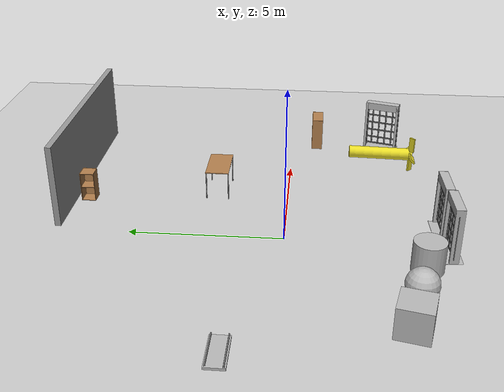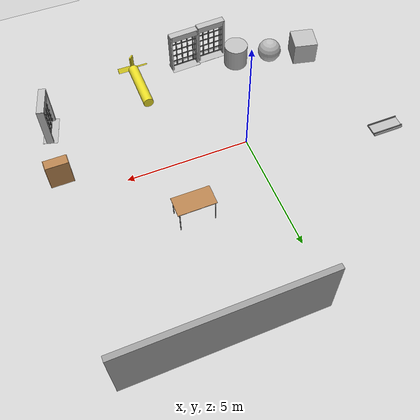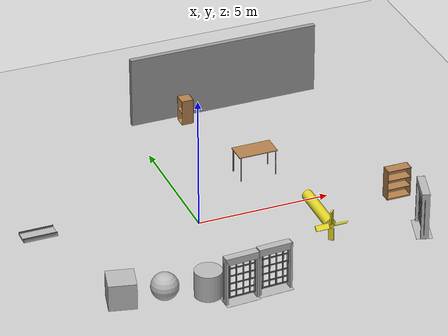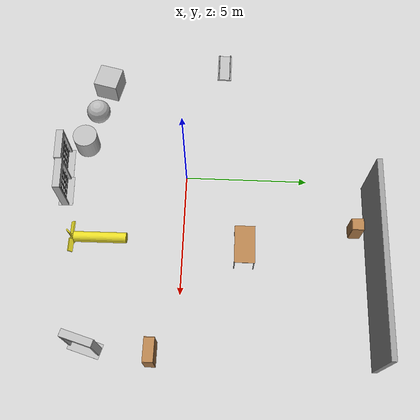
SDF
<sdf version="1.6">
 <world name="default">
  <light name="sun" type="directional">
   <pose>0 0 10 0 -0 0</pose>
   <diffuse>0.8 0.8 0.8 1</diffuse>
   <specular>0.2 0.2 0.2 1</specular>
   <attenuation>
    <range>1000</range>
    <constant>0.9</constant>
    <linear>0.01</linear>
    <quadratic>0.001</quadratic>
   </attenuation>
   <direction>-0.5 0.1 -0.9</direction>
  </light>
  <model name="ground_plane">
   <static>1</static>
   <link name="link">
    <collision name="collision">
     <geometry><plane><normal>0 0 1</normal><size>100 100</size></plane></geometry>
     <surface><friction><ode><mu>100</mu><mu2>50</mu2></ode></friction></surface>
    </collision>
    <visual name="visual">
     <cast_shadows>0</cast_shadows>
     <geometry><plane><normal>0 0 1</normal><size>100 100</size></plane></geometry>
     <material>
      <script><uri>file://media/materials/scripts/gazebo.material</uri><name>Gazebo/Grey</name></script>
     </material>
    </visual>
   </link>
  </model>
  <gravity>0 0 -9.8</gravity>
  <magnetic_field>6e-06 2.3e-05 -4.2e-05</magnetic_field>
  <atmosphere type="adiabatic"/>
  <physics name="default_physics" default="0" type="ode">
   <max_step_size>0.001</max_step_size>
   <real_time_factor>1</real_time_factor>
   <real_time_update_rate>1000</real_time_update_rate>
  </physics>
  <scene><ambient>0.4 0.4 0.4 1</ambient><background>0.7 0.7 0.7 1</background><shadows>1</shadows></scene>
  <spherical_coordinates>
   <surface_model>EARTH_WGS84</surface_model>
   <latitude_deg>0</latitude_deg>
   <longitude_deg>0</longitude_deg>
   <elevation>0</elevation>
   <heading_deg>0</heading_deg>
  </spherical_coordinates>
  <model name="frc2016_portcullis">
   <link name="base">
    <inertial>
     <mass>50</mass>
     <pose>0 0 1.02941 0 -0 0</pose>
     <inertia><ixx>3.81711</ixx><ixy>0</ixy><ixz>0</ixz><iyy>4.87698</iyy><iyz>0</iyz><izz>1.6283</izz></inertia>
    </inertial>
    <visual name="platform">
     <pose>0 0 0.07284 0 -0 0</pose>
     <geometry><box><size>1.27 0.5842 0.003175</size></box></geometry>
    </visual>
    <collision name="platform">
     <pose>0 0 0.07284 0 -0 0</pose>
     <geometry><box><size>1.27 0.5842 0.003175</size></box></geometry>
    </collision>
    <visual name="left_column">
     <pose>0.59284 0 0.99042 0 -0 0</pose>
     <geometry><box><size>0.08375 0.28575 1.83198</size></box></geometry>
    </visual>
    <collision name="left_column">
     <pose>0.59284 0 0.99042 0 -0 0</pose>
     <geometry><box><size>0.08375 0.28575 1.83198</size></box></geometry>
    </collision>
    <visual name="right_column">
     <pose>-0.57759 0 0.99042 0 -0 0</pose>
     <geometry><box><size>0.08375 0.28575 1.83198</size></box></geometry>
    </visual>
    <collision name="right_column">
     <pose>-0.57759 0 0.99042 0 -0 0</pose>
     <geometry><box><size>0.08375 0.28575 1.83198</size></box></geometry>
    </collision>
    <visual name="top">
     <pose>-0.00034 0 1.77722 0 -0 0</pose>
     <geometry><box><size>1.22962 0.28575 0.26657</size></box></geometry>
    </visual>
    <collision name="top">
     <pose>-0.00034 0 1.77722 0 -0 0</pose>
     <geometry><box><size>1.22962 0.28575 0.26657</size></box></geometry>
    </collision>
    <visual name="castor1">
     <pose>-0.45651 -0.16234 0.03272 0 -0 0</pose>
     <geometry><sphere><radius>0.03272</radius></sphere></geometry>
    </visual>
    <collision name="castor1">
     <pose>-0.45651 -0.16234 0.03272 0 -0 0</pose>
     <geometry><sphere><radius>0.03272</radius></sphere></geometry>
    </collision>
    <visual name="castor2">
     <pose>-0.27883 0.21836 0.03272 0 -0 0</pose>
     <geometry><sphere><radius>0.03272</radius></sphere></geometry>
    </visual>
    <collision name="castor2">
     <pose>-0.27883 0.21836 0.03272 0 -0 0</pose>
     <geometry><sphere><radius>0.03272</radius></sphere></geometry>
    </collision>
    <visual name="castor3">
     <pose>0.28083 0.21906 0.03272 0 -0 0</pose>
     <geometry><sphere><radius>0.03272</radius></sphere></geometry>
    </visual>
    <collision name="castor3">
     <pose>0.28083 0.21906 0.03272 0 -0 0</pose>
     <geometry><sphere><radius>0.03272</radius></sphere></geometry>
    </collision>
    <visual name="castor4">
     <pose>0.45871 -0.16186 0.03272 0 -0 0</pose>
     <geometry><sphere><radius>0.03272</radius></sphere></geometry>
    </visual>
    <collision name="castor4">
     <pose>0.45871 -0.16186 0.03272 0 -0 0</pose>
     <geometry><sphere><radius>0.03272</radius></sphere></geometry>
    </collision>
   </link>
   <link name="gate">
    <pose>-0.0287 0.02885 0.93327 0 -0 0</pose>
    <inertial>
     <mass>2</mass>
     <inertia><ixx>3.81711</ixx><ixy>0</ixy><ixz>0</ixz><iyy>4.87698</iyy><iyz>0</iyz><izz>1.6283</izz></inertia>
    </inertial>
    <collision name="collision"><geometry><box><size>1.1938 0.02496 1.45732</size></box></geometry></collision>
    <visual name="horz_1">
     <pose>0 0 -0.70326 0 -0 0</pose>
     <geometry><box><size>1.1938 0.02496 0.0508</size></box></geometry>
     <material><ambient>0.4 0.4 0.4 1</ambient><diffuse>0.4 0.4 0.4 1</diffuse></material>
    </visual>
    <visual name="horz_2">
     <pose>0 0 -0.44926 0 -0 0</pose>
     <geometry><box><size>1.1938 0.02496 0.0508</size></box></geometry>
     <material><ambient>0.4 0.4 0.4 1</ambient><diffuse>0.4 0.4 0.4 1</diffuse></material>
    </visual>
    <visual name="horz_3">
     <pose>0 0 -0.14517 0 -0 0</pose>
     <geometry><box><size>1.1938 0.02496 0.0508</size></box></geometry>
     <material><ambient>0.4 0.4 0.4 1</ambient><diffuse>0.4 0.4 0.4 1</diffuse></material>
    </visual>
    <visual name="horz_4">
     <pose>0 0 0.16034 0 -0 0</pose>
     <geometry><box><size>1.1938 0.02496 0.0508</size></box></geometry>
     <material><ambient>0.4 0.4 0.4 1</ambient><diffuse>0.4 0.4 0.4 1</diffuse></material>
    </visual>
    <visual name="horz_5">
     <pose>0 0 0.46514 0 -0 0</pose>
     <geometry><box><size>1.1938 0.02496 0.0508</size></box></geometry>
     <material><ambient>0.4 0.4 0.4 1</ambient><diffuse>0.4 0.4 0.4 1</diffuse></material>
    </visual>
    <visual name="horz_6">
     <pose>0 0 0.72994 0 -0 0</pose>
     <geometry><box><size>1.1938 0.02496 0.0508</size></box></geometry>
     <material><ambient>0.4 0.4 0.4 1</ambient><diffuse>0.4 0.4 0.4 1</diffuse></material>
    </visual>
    <visual name="vert_1">
     <pose>-0.58448 0 0 0 -0 0</pose>
     <geometry><box><size>0.02495 0.02496 1.45732</size></box></geometry>
     <material><ambient>0.4 0.4 0.4 1</ambient><diffuse>0.4 0.4 0.4 1</diffuse></material>
    </visual>
    <visual name="vert_2">
     <pose>-0.38128 0 0 0 -0 0</pose>
     <geometry><box><size>0.0508 0.02496 1.45732</size></box></geometry>
     <material><ambient>0.4 0.4 0.4 1</ambient><diffuse>0.4 0.4 0.4 1</diffuse></material>
    </visual>
    <visual name="vert_3">
     <pose>-0.12728 0 0 0 -0 0</pose>
     <geometry><box><size>0.0508 0.02496 1.45732</size></box></geometry>
     <material><ambient>0.4 0.4 0.4 1</ambient><diffuse>0.4 0.4 0.4 1</diffuse></material>
    </visual>
    <visual name="vert_4">
     <pose>0.12672 0 0 0 -0 0</pose>
     <geometry><box><size>0.0508 0.02496 1.45732</size></box></geometry>
     <material><ambient>0.4 0.4 0.4 1</ambient><diffuse>0.4 0.4 0.4 1</diffuse></material>
    </visual>
    <visual name="vert_5">
     <pose>0.38072 0 0 0 -0 0</pose>
     <geometry><box><size>0.0508 0.02496 1.45732</size></box></geometry>
     <material><ambient>0.4 0.4 0.4 1</ambient><diffuse>0.4 0.4 0.4 1</diffuse></material>
    </visual>
    <visual name="vert_6">
     <pose>0.58392 0 0 0 -0 0</pose>
     <geometry><box><size>0.02495 0.02496 1.45732</size></box></geometry>
     <material><ambient>0.4 0.4 0.4 1</ambient><diffuse>0.4 0.4 0.4 1</diffuse></material>
    </visual>
   </link>
   <joint name="joint" type="prismatic">
    <parent>base</parent>
    <child>gate</child>
    <axis>
     <xyz>0 0 1</xyz>
     <limit><lower>0</lower><upper>1</upper></limit>
     <use_parent_model_frame>0</use_parent_model_frame>
     <dynamics><spring_reference>0</spring_reference><spring_stiffness>0</spring_stiffness></dynamics>
    </axis>
   </joint>
   <pose>-0.462471 -5.08291 -1e-06 1e-06 3e-06 0.045761</pose>
  </model>
  <model name="frc2016_portcullis_clone">
   <link name="base">
    <inertial>
     <mass>50</mass>
     <pose>0 0 1.02941 0 -0 0</pose>
     <inertia><ixx>3.81711</ixx><ixy>0</ixy><ixz>0</ixz><iyy>4.87698</iyy><iyz>0</iyz><izz>1.6283</izz></inertia>
    </inertial>
    <visual name="platform">
     <pose>0 0 0.07284 0 -0 0</pose>
     <geometry><box><size>1.27 0.5842 0.003175</size></box></geometry>
    </visual>
    <collision name="platform">
     <pose>0 0 0.07284 0 -0 0</pose>
     <geometry><box><size>1.27 0.5842 0.003175</size></box></geometry>
    </collision>
    <visual name="left_column">
     <pose>0.59284 0 0.99042 0 -0 0</pose>
     <geometry><box><size>0.08375 0.28575 1.83198</size></box></geometry>
    </visual>
    <collision name="left_column">
     <pose>0.59284 0 0.99042 0 -0 0</pose>
     <geometry><box><size>0.08375 0.28575 1.83198</size></box></geometry>
    </collision>
    <visual name="right_column">
     <pose>-0.57759 0 0.99042 0 -0 0</pose>
     <geometry><box><size>0.08375 0.28575 1.83198</size></box></geometry>
    </visual>
    <collision name="right_column">
     <pose>-0.57759 0 0.99042 0 -0 0</pose>
     <geometry><box><size>0.08375 0.28575 1.83198</size></box></geometry>
    </collision>
    <visual name="top">
     <pose>-0.00034 0 1.77722 0 -0 0</pose>
     <geometry><box><size>1.22962 0.28575 0.26657</size></box></geometry>
    </visual>
    <collision name="top">
     <pose>-0.00034 0 1.77722 0 -0 0</pose>
     <geometry><box><size>1.22962 0.28575 0.26657</size></box></geometry>
    </collision>
    <visual name="castor1">
     <pose>-0.45651 -0.16234 0.03272 0 -0 0</pose>
     <geometry><sphere><radius>0.03272</radius></sphere></geometry>
    </visual>
    <collision name="castor1">
     <pose>-0.45651 -0.16234 0.03272 0 -0 0</pose>
     <geometry><sphere><radius>0.03272</radius></sphere></geometry>
    </collision>
    <visual name="castor2">
     <pose>-0.27883 0.21836 0.03272 0 -0 0</pose>
     <geometry><sphere><radius>0.03272</radius></sphere></geometry>
    </visual>
    <collision name="castor2">
     <pose>-0.27883 0.21836 0.03272 0 -0 0</pose>
     <geometry><sphere><radius>0.03272</radius></sphere></geometry>
    </collision>
    <visual name="castor3">
     <pose>0.28083 0.21906 0.03272 0 -0 0</pose>
     <geometry><sphere><radius>0.03272</radius></sphere></geometry>
    </visual>
    <collision name="castor3">
     <pose>0.28083 0.21906 0.03272 0 -0 0</pose>
     <geometry><sphere><radius>0.03272</radius></sphere></geometry>
    </collision>
    <visual name="castor4">
     <pose>0.45871 -0.16186 0.03272 0 -0 0</pose>
     <geometry><sphere><radius>0.03272</radius></sphere></geometry>
    </visual>
    <collision name="castor4">
     <pose>0.45871 -0.16186 0.03272 0 -0 0</pose>
     <geometry><sphere><radius>0.03272</radius></sphere></geometry>
    </collision>
   </link>
   <link name="gate">
    <pose>-0.0287 0.02885 0.93327 0 -0 0</pose>
    <inertial>
     <mass>2</mass>
     <inertia><ixx>3.81711</ixx><ixy>0</ixy><ixz>0</ixz><iyy>4.87698</iyy><iyz>0</iyz><izz>1.6283</izz></inertia>
    </inertial>
    <collision name="collision"><geometry><box><size>1.1938 0.02496 1.45732</size></box></geometry></collision>
    <visual name="horz_1">
     <pose>0 0 -0.70326 0 -0 0</pose>
     <geometry><box><size>1.1938 0.02496 0.0508</size></box></geometry>
     <material><ambient>0.4 0.4 0.4 1</ambient><diffuse>0.4 0.4 0.4 1</diffuse></material>
    </visual>
    <visual name="horz_2">
     <pose>0 0 -0.44926 0 -0 0</pose>
     <geometry><box><size>1.1938 0.02496 0.0508</size></box></geometry>
     <material><ambient>0.4 0.4 0.4 1</ambient><diffuse>0.4 0.4 0.4 1</diffuse></material>
    </visual>
    <visual name="horz_3">
     <pose>0 0 -0.14517 0 -0 0</pose>
     <geometry><box><size>1.1938 0.02496 0.0508</size></box></geometry>
     <material><ambient>0.4 0.4 0.4 1</ambient><diffuse>0.4 0.4 0.4 1</diffuse></material>
    </visual>
    <visual name="horz_4">
     <pose>0 0 0.16034 0 -0 0</pose>
     <geometry><box><size>1.1938 0.02496 0.0508</size></box></geometry>
     <material><ambient>0.4 0.4 0.4 1</ambient><diffuse>0.4 0.4 0.4 1</diffuse></material>
    </visual>
    <visual name="horz_5">
     <pose>0 0 0.46514 0 -0 0</pose>
     <geometry><box><size>1.1938 0.02496 0.0508</size></box></geometry>
     <material><ambient>0.4 0.4 0.4 1</ambient><diffuse>0.4 0.4 0.4 1</diffuse></material>
    </visual>
    <visual name="horz_6">
     <pose>0 0 0.72994 0 -0 0</pose>
     <geometry><box><size>1.1938 0.02496 0.0508</size></box></geometry>
     <material><ambient>0.4 0.4 0.4 1</ambient><diffuse>0.4 0.4 0.4 1</diffuse></material>
    </visual>
    <visual name="vert_1">
     <pose>-0.58448 0 0 0 -0 0</pose>
     <geometry><box><size>0.02495 0.02496 1.45732</size></box></geometry>
     <material><ambient>0.4 0.4 0.4 1</ambient><diffuse>0.4 0.4 0.4 1</diffuse></material>
    </visual>
    <visual name="vert_2">
     <pose>-0.38128 0 0 0 -0 0</pose>
     <geometry><box><size>0.0508 0.02496 1.45732</size></box></geometry>
     <material><ambient>0.4 0.4 0.4 1</ambient><diffuse>0.4 0.4 0.4 1</diffuse></material>
    </visual>
    <visual name="vert_3">
     <pose>-0.12728 0 0 0 -0 0</pose>
     <geometry><box><size>0.0508 0.02496 1.45732</size></box></geometry>
     <material><ambient>0.4 0.4 0.4 1</ambient><diffuse>0.4 0.4 0.4 1</diffuse></material>
    </visual>
    <visual name="vert_4">
     <pose>0.12672 0 0 0 -0 0</pose>
     <geometry><box><size>0.0508 0.02496 1.45732</size></box></geometry>
     <material><ambient>0.4 0.4 0.4 1</ambient><diffuse>0.4 0.4 0.4 1</diffuse></material>
    </visual>
    <visual name="vert_5">
     <pose>0.38072 0 0 0 -0 0</pose>
     <geometry><box><size>0.0508 0.02496 1.45732</size></box></geometry>
     <material><ambient>0.4 0.4 0.4 1</ambient><diffuse>0.4 0.4 0.4 1</diffuse></material>
    </visual>
    <visual name="vert_6">
     <pose>0.58392 0 0 0 -0 0</pose>
     <geometry><box><size>0.02495 0.02496 1.45732</size></box></geometry>
     <material><ambient>0.4 0.4 0.4 1</ambient><diffuse>0.4 0.4 0.4 1</diffuse></material>
    </visual>
   </link>
   <joint name="joint" type="prismatic">
    <parent>base</parent>
    <child>gate</child>
    <axis>
     <xyz>0 0 1</xyz>
     <limit><lower>0</lower><upper>1</upper></limit>
     <use_parent_model_frame>0</use_parent_model_frame>
     <dynamics><spring_reference>0</spring_reference><spring_stiffness>0</spring_stiffness></dynamics>
    </axis>
   </joint>
   <pose>0.803494 -4.9657 0 -3e-06 1e-06 0.045755</pose>
  </model>
  <model name="frc2016_portcullis_clone_clone">
   <link name="base">
    <inertial>
     <mass>50</mass>
     <pose>0 0 1.02941 0 -0 0</pose>
     <inertia><ixx>3.81711</ixx><ixy>0</ixy><ixz>0</ixz><iyy>4.87698</iyy><iyz>0</iyz><izz>1.6283</izz></inertia>
    </inertial>
    <visual name="platform">
     <pose>0 0 0.07284 0 -0 0</pose>
     <geometry><box><size>1.27 0.5842 0.003175</size></box></geometry>
    </visual>
    <collision name="platform">
     <pose>0 0 0.07284 0 -0 0</pose>
     <geometry><box><size>1.27 0.5842 0.003175</size></box></geometry>
    </collision>
    <visual name="left_column">
     <pose>0.59284 0 0.99042 0 -0 0</pose>
     <geometry><box><size>0.08375 0.28575 1.83198</size></box></geometry>
    </visual>
    <collision name="left_column">
     <pose>0.59284 0 0.99042 0 -0 0</pose>
     <geometry><box><size>0.08375 0.28575 1.83198</size></box></geometry>
    </collision>
    <visual name="right_column">
     <pose>-0.57759 0 0.99042 0 -0 0</pose>
     <geometry><box><size>0.08375 0.28575 1.83198</size></box></geometry>
    </visual>
    <collision name="right_column">
     <pose>-0.57759 0 0.99042 0 -0 0</pose>
     <geometry><box><size>0.08375 0.28575 1.83198</size></box></geometry>
    </collision>
    <visual name="top">
     <pose>-0.00034 0 1.77722 0 -0 0</pose>
     <geometry><box><size>1.22962 0.28575 0.26657</size></box></geometry>
    </visual>
    <collision name="top">
     <pose>-0.00034 0 1.77722 0 -0 0</pose>
     <geometry><box><size>1.22962 0.28575 0.26657</size></box></geometry>
    </collision>
    <visual name="castor1">
     <pose>-0.45651 -0.16234 0.03272 0 -0 0</pose>
     <geometry><sphere><radius>0.03272</radius></sphere></geometry>
    </visual>
    <collision name="castor1">
     <pose>-0.45651 -0.16234 0.03272 0 -0 0</pose>
     <geometry><sphere><radius>0.03272</radius></sphere></geometry>
    </collision>
    <visual name="castor2">
     <pose>-0.27883 0.21836 0.03272 0 -0 0</pose>
     <geometry><sphere><radius>0.03272</radius></sphere></geometry>
    </visual>
    <collision name="castor2">
     <pose>-0.27883 0.21836 0.03272 0 -0 0</pose>
     <geometry><sphere><radius>0.03272</radius></sphere></geometry>
    </collision>
    <visual name="castor3">
     <pose>0.28083 0.21906 0.03272 0 -0 0</pose>
     <geometry><sphere><radius>0.03272</radius></sphere></geometry>
    </visual>
    <collision name="castor3">
     <pose>0.28083 0.21906 0.03272 0 -0 0</pose>
     <geometry><sphere><radius>0.03272</radius></sphere></geometry>
    </collision>
    <visual name="castor4">
     <pose>0.45871 -0.16186 0.03272 0 -0 0</pose>
     <geometry><sphere><radius>0.03272</radius></sphere></geometry>
    </visual>
    <collision name="castor4">
     <pose>0.45871 -0.16186 0.03272 0 -0 0</pose>
     <geometry><sphere><radius>0.03272</radius></sphere></geometry>
    </collision>
   </link>
   <link name="gate">
    <pose>-0.0287 0.02885 0.93327 0 -0 0</pose>
    <inertial>
     <mass>2</mass>
     <inertia><ixx>3.81711</ixx><ixy>0</ixy><ixz>0</ixz><iyy>4.87698</iyy><iyz>0</iyz><izz>1.6283</izz></inertia>
    </inertial>
    <collision name="collision"><geometry><box><size>1.1938 0.02496 1.45732</size></box></geometry></collision>
    <visual name="horz_1">
     <pose>0 0 -0.70326 0 -0 0</pose>
     <geometry><box><size>1.1938 0.02496 0.0508</size></box></geometry>
     <material><ambient>0.4 0.4 0.4 1</ambient><diffuse>0.4 0.4 0.4 1</diffuse></material>
    </visual>
    <visual name="horz_2">
     <pose>0 0 -0.44926 0 -0 0</pose>
     <geometry><box><size>1.1938 0.02496 0.0508</size></box></geometry>
     <material><ambient>0.4 0.4 0.4 1</ambient><diffuse>0.4 0.4 0.4 1</diffuse></material>
    </visual>
    <visual name="horz_3">
     <pose>0 0 -0.14517 0 -0 0</pose>
     <geometry><box><size>1.1938 0.02496 0.0508</size></box></geometry>
     <material><ambient>0.4 0.4 0.4 1</ambient><diffuse>0.4 0.4 0.4 1</diffuse></material>
    </visual>
    <visual name="horz_4">
     <pose>0 0 0.16034 0 -0 0</pose>
     <geometry><box><size>1.1938 0.02496 0.0508</size></box></geometry>
     <material><ambient>0.4 0.4 0.4 1</ambient><diffuse>0.4 0.4 0.4 1</diffuse></material>
    </visual>
    <visual name="horz_5">
     <pose>0 0 0.46514 0 -0 0</pose>
     <geometry><box><size>1.1938 0.02496 0.0508</size></box></geometry>
     <material><ambient>0.4 0.4 0.4 1</ambient><diffuse>0.4 0.4 0.4 1</diffuse></material>
    </visual>
    <visual name="horz_6">
     <pose>0 0 0.72994 0 -0 0</pose>
     <geometry><box><size>1.1938 0.02496 0.0508</size></box></geometry>
     <material><ambient>0.4 0.4 0.4 1</ambient><diffuse>0.4 0.4 0.4 1</diffuse></material>
    </visual>
    <visual name="vert_1">
     <pose>-0.58448 0 0 0 -0 0</pose>
     <geometry><box><size>0.02495 0.02496 1.45732</size></box></geometry>
     <material><ambient>0.4 0.4 0.4 1</ambient><diffuse>0.4 0.4 0.4 1</diffuse></material>
    </visual>
    <visual name="vert_2">
     <pose>-0.38128 0 0 0 -0 0</pose>
     <geometry><box><size>0.0508 0.02496 1.45732</size></box></geometry>
     <material><ambient>0.4 0.4 0.4 1</ambient><diffuse>0.4 0.4 0.4 1</diffuse></material>
    </visual>
    <visual name="vert_3">
     <pose>-0.12728 0 0 0 -0 0</pose>
     <geometry><box><size>0.0508 0.02496 1.45732</size></box></geometry>
     <material><ambient>0.4 0.4 0.4 1</ambient><diffuse>0.4 0.4 0.4 1</diffuse></material>
    </visual>
    <visual name="vert_4">
     <pose>0.12672 0 0 0 -0 0</pose>
     <geometry><box><size>0.0508 0.02496 1.45732</size></box></geometry>
     <material><ambient>0.4 0.4 0.4 1</ambient><diffuse>0.4 0.4 0.4 1</diffuse></material>
    </visual>
    <visual name="vert_5">
     <pose>0.38072 0 0 0 -0 0</pose>
     <geometry><box><size>0.0508 0.02496 1.45732</size></box></geometry>
     <material><ambient>0.4 0.4 0.4 1</ambient><diffuse>0.4 0.4 0.4 1</diffuse></material>
    </visual>
    <visual name="vert_6">
     <pose>0.58392 0 0 0 -0 0</pose>
     <geometry><box><size>0.02495 0.02496 1.45732</size></box></geometry>
     <material><ambient>0.4 0.4 0.4 1</ambient><diffuse>0.4 0.4 0.4 1</diffuse></material>
    </visual>
   </link>
   <joint name="joint" type="prismatic">
    <parent>base</parent>
    <child>gate</child>
    <axis>
     <xyz>0 0 1</xyz>
     <limit><lower>0</lower><upper>1</upper></limit>
     <use_parent_model_frame>0</use_parent_model_frame>
     <dynamics><spring_reference>0</spring_reference><spring_stiffness>0</spring_stiffness></dynamics>
    </axis>
   </joint>
   <pose>7.14739 -3.44477 1e-06 0 2e-06 1.2833</pose>
  </model>
  <model name="table">
   <static>1</static>
   <link name="link">
    <collision name="surface">
     <pose>0 0 1 0 -0 0</pose>
     <geometry><box><size>1.5 0.8 0.03</size></box></geometry>
     <surface><friction><ode><mu>0.6</mu><mu2>0.6</mu2></ode></friction></surface>
    </collision>
    <visual name="visual1">
     <pose>0 0 1 0 -0 0</pose>
     <geometry><box><size>1.5 0.8 0.03</size></box></geometry>
     <material>
      <script><uri>file://media/materials/scripts/gazebo.material</uri><name>Gazebo/Wood</name></script>
     </material>
    </visual>
    <collision name="front_left_leg">
     <pose>0.68 0.38 0.5 0 -0 0</pose>
     <geometry><cylinder><radius>0.02</radius><length>1</length></cylinder></geometry>
    </collision>
    <visual name="front_left_leg">
     <pose>0.68 0.38 0.5 0 -0 0</pose>
     <geometry><cylinder><radius>0.02</radius><length>1</length></cylinder></geometry>
     <material>
      <script><uri>file://media/materials/scripts/gazebo.material</uri><name>Gazebo/Grey</name></script>
     </material>
    </visual>
    <collision name="front_right_leg">
     <pose>0.68 -0.38 0.5 0 -0 0</pose>
     <geometry><cylinder><radius>0.02</radius><length>1</length></cylinder></geometry>
    </collision>
    <visual name="front_right_leg">
     <pose>0.68 -0.38 0.5 0 -0 0</pose>
     <geometry><cylinder><radius>0.02</radius><length>1</length></cylinder></geometry>
     <material>
      <script><uri>file://media/materials/scripts/gazebo.material</uri><name>Gazebo/Grey</name></script>
     </material>
    </visual>
    <collision name="back_right_leg">
     <pose>-0.68 -0.38 0.5 0 -0 0</pose>
     <geometry><cylinder><radius>0.02</radius><length>1</length></cylinder></geometry>
    </collision>
    <visual name="back_right_leg">
     <pose>-0.68 -0.38 0.5 0 -0 0</pose>
     <geometry><cylinder><radius>0.02</radius><length>1</length></cylinder></geometry>
     <material>
      <script><uri>file://media/materials/scripts/gazebo.material</uri><name>Gazebo/Grey</name></script>
     </material>
    </visual>
    <collision name="back_left_leg">
     <pose>-0.68 0.38 0.5 0 -0 0</pose>
     <geometry><cylinder><radius>0.02</radius><length>1</length></cylinder></geometry>
    </collision>
    <visual name="back_left_leg">
     <pose>-0.68 0.38 0.5 0 -0 0</pose>
     <geometry><cylinder><radius>0.02</radius><length>1</length></cylinder></geometry>
     <material>
      <script><uri>file://media/materials/scripts/gazebo.material</uri><name>Gazebo/Grey</name></script>
     </material>
    </visual>
   </link>
   <pose>3.1618 2.44114 0 0 -0 0</pose>
  </model>
  <model name="grey_wall">
   <static>1</static>
   <link name="link">
    <pose>0 0 1.4 0 -0 0</pose>
    <collision name="collision"><geometry><box><size>7.5 0.2 2.8</size></box></geometry></collision>
    <visual name="visual">
     <cast_shadows>0</cast_shadows>
     <geometry><box><size>7.5 0.2 2.8</size></box></geometry>
     <material>
      <script>
       <uri>model://grey_wall/materials/scripts</uri>
       <uri>model://grey_wall/materials/textures</uri>
       <name>vrc/grey_wall</name>
      </script>
     </material>
    </visual>
   </link>
   <pose>3.91987 7.39129 0 0 -0 0</pose>
  </model>
  <model name="cabinet">
   <static>1</static>
   <link name="cabinet_bottom_plate">
    <inertial>
     <pose>0 0 -1 0 -0 0</pose>
     <inertia><ixx>2.05</ixx><ixy>0</ixy><ixz>0</ixz><iyy>2.05</iyy><iyz>0</iyz><izz>2.05</izz></inertia>
     <mass>25</mass>
    </inertial>
    <collision name="cabinet_bottom_plate_geom">
     <pose>0 0 0.01 0 -0 0</pose>
     <geometry><box><size>0.45 0.45 0.02</size></box></geometry>
    </collision>
    <visual name="cabinet_bottom_plate_geom_visual">
     <pose>0 0 0.01 0 -0 0</pose>
     <geometry><box><size>0.45 0.45 0.02</size></box></geometry>
     <material>
      <script><uri>file://media/materials/scripts/gazebo.material</uri><name>Gazebo/Wood</name></script>
     </material>
    </visual>
    <collision name="cabinet_bottom_plate_geom_cabinet_back_plate">
     <pose>0.235 0 0.51 0 -0 0</pose>
     <geometry><box><size>0.02 0.45 1.02</size></box></geometry>
    </collision>
    <visual name="cabinet_bottom_plate_geom_cabinet_back_plate_visual">
     <pose>0.235 0 0.51 0 -0 0</pose>
     <geometry><box><size>0.02 0.45 1.02</size></box></geometry>
     <material>
      <script><uri>file://media/materials/scripts/gazebo.material</uri><name>Gazebo/Wood</name></script>
     </material>
    </visual>
    <collision name="cabinet_bottom_plate_geom_cabinet_left_plate">
     <pose>0 0.235 0.51 0 -0 0</pose>
     <geometry><box><size>0.45 0.02 1.02</size></box></geometry>
    </collision>
    <visual name="cabinet_bottom_plate_geom_cabinet_left_plate_visual">
     <pose>0 0.235 0.51 0 -0 0</pose>
     <geometry><box><size>0.45 0.02 1.02</size></box></geometry>
     <material>
      <script><uri>file://media/materials/scripts/gazebo.material</uri><name>Gazebo/Wood</name></script>
     </material>
    </visual>
    <collision name="cabinet_bottom_plate_geom_cabinet_middle_plate">
     <pose>0 0 0.51 0 -0 0</pose>
     <geometry><box><size>0.45 0.45 0.02</size></box></geometry>
    </collision>
    <visual name="cabinet_bottom_plate_geom_cabinet_middle_plate_visual">
     <pose>0 0 0.51 0 -0 0</pose>
     <geometry><box><size>0.45 0.45 0.02</size></box></geometry>
     <material>
      <script><uri>file://media/materials/scripts/gazebo.material</uri><name>Gazebo/Wood</name></script>
     </material>
    </visual>
    <collision name="cabinet_bottom_plate_geom_cabinet_right_plate">
     <pose>0 -0.235 0.51 0 -0 0</pose>
     <geometry><box><size>0.45 0.02 1.02</size></box></geometry>
    </collision>
    <visual name="cabinet_bottom_plate_geom_cabinet_right_plate_visual">
     <pose>0 -0.235 0.51 0 -0 0</pose>
     <geometry><box><size>0.45 0.02 1.02</size></box></geometry>
     <material>
      <script><uri>file://media/materials/scripts/gazebo.material</uri><name>Gazebo/Wood</name></script>
     </material>
    </visual>
    <collision name="cabinet_bottom_plate_geom_cabinet_top_plate">
     <pose>0 0 1.01 0 -0 0</pose>
     <geometry><box><size>0.45 0.45 0.02</size></box></geometry>
    </collision>
    <visual name="cabinet_bottom_plate_geom_cabinet_top_plate_visual">
     <pose>0 0 1.01 0 -0 0</pose>
     <geometry><box><size>0.45 0.45 0.02</size></box></geometry>
     <material>
      <script><uri>file://media/materials/scripts/gazebo.material</uri><name>Gazebo/Wood</name></script>
     </material>
    </visual>
   </link>
   <pose>2.16002 6.86215 0 0 -0 0</pose>
  </model>
  <model name="bookshelf">
   <static>1</static>
   <link name="link">
    <inertial><mass>1</mass></inertial>
    <collision name="back">
     <pose>0 0.005 0.6 0 -0 0</pose>
     <geometry><box><size>0.9 0.01 1.2</size></box></geometry>
    </collision>
    <visual name="visual1">
     <pose>0 0.005 0.6 0 -0 0</pose>
     <geometry><box><size>0.9 0.01 1.2</size></box></geometry>
     <material>
      <script><uri>file://media/materials/scripts/gazebo.material</uri><name>Gazebo/Wood</name></script>
     </material>
    </visual>
    <collision name="left_side">
     <pose>0.45 -0.195 0.6 0 -0 0</pose>
     <geometry><box><size>0.02 0.4 1.2</size></box></geometry>
    </collision>
    <visual name="visual2">
     <pose>0.45 -0.195 0.6 0 -0 0</pose>
     <geometry><box><size>0.02 0.4 1.2</size></box></geometry>
     <material>
      <script><uri>file://media/materials/scripts/gazebo.material</uri><name>Gazebo/Wood</name></script>
     </material>
    </visual>
    <collision name="right_side">
     <pose>-0.45 -0.195 0.6 0 -0 0</pose>
     <geometry><box><size>0.02 0.4 1.2</size></box></geometry>
    </collision>
    <visual name="visual3">
     <pose>-0.45 -0.195 0.6 0 -0 0</pose>
     <geometry><box><size>0.02 0.4 1.2</size></box></geometry>
     <material>
      <script><uri>file://media/materials/scripts/gazebo.material</uri><name>Gazebo/Wood</name></script>
     </material>
    </visual>
    <collision name="bottom">
     <pose>0 -0.195 0.03 0 -0 0</pose>
     <geometry><box><size>0.88 0.4 0.06</size></box></geometry>
    </collision>
    <visual name="visual4">
     <pose>0 -0.195 0.03 0 -0 0</pose>
     <geometry><box><size>0.88 0.4 0.06</size></box></geometry>
     <material>
      <script><uri>file://media/materials/scripts/gazebo.material</uri><name>Gazebo/Wood</name></script>
     </material>
    </visual>
    <collision name="top">
     <pose>0 -0.195 1.19 0 -0 0</pose>
     <geometry><box><size>0.88 0.4 0.02</size></box></geometry>
    </collision>
    <visual name="visual5">
     <pose>0 -0.195 1.19 0 -0 0</pose>
     <geometry><box><size>0.88 0.4 0.02</size></box></geometry>
     <material>
      <script><uri>file://media/materials/scripts/gazebo.material</uri><name>Gazebo/Wood</name></script>
     </material>
    </visual>
    <collision name="low_shelf">
     <pose>0 -0.195 0.43 0 -0 0</pose>
     <geometry><box><size>0.88 0.4 0.02</size></box></geometry>
    </collision>
    <visual name="visual6">
     <pose>0 -0.195 0.43 0 -0 0</pose>
     <geometry><box><size>0.88 0.4 0.02</size></box></geometry>
     <material>
      <script><uri>file://media/materials/scripts/gazebo.material</uri><name>Gazebo/Wood</name></script>
     </material>
    </visual>
    <collision name="high_shelf">
     <pose>0 -0.195 0.8 0 -0 0</pose>
     <geometry><box><size>0.88 0.4 0.02</size></box></geometry>
    </collision>
    <visual name="visual7">
     <pose>0 -0.195 0.8 0 -0 0</pose>
     <geometry><box><size>0.88 0.4 0.02</size></box></geometry>
     <material>
      <script><uri>file://media/materials/scripts/gazebo.material</uri><name>Gazebo/Wood</name></script>
     </material>
    </visual>
   </link>
   <pose>7.33525 -0.756155 0 0 -0 0</pose>
  </model>
  <model name="frc2016_moat">
   <static>1</static>
   <link name="link">
    <inertial>
     <mass>10</mass>
     <pose>0 0 0.06738 0 -0 0</pose>
     <inertia><ixx>0.312195</ixx><ixy>0</ixy><ixz>0</ixz><iyy>1.35927</iyy><iyz>0</iyz><izz>1.64109</izz></inertia>
    </inertial>
    <visual name="platform">
     <pose>0 0 0.0381 0 -0 0</pose>
     <geometry><box><size>1.27 0.5969 0.0762</size></box></geometry>
    </visual>
    <collision name="platform">
     <pose>0 0 0.0381 0 -0 0</pose>
     <geometry><box><size>1.27 0.5969 0.0762</size></box></geometry>
    </collision>
    <visual name="tube1_side1">
     <pose>0 -0.25876 0.10301 0 -0 0</pose>
     <geometry><box><size>1.27 0.003175 0.0635</size></box></geometry>
     <material><ambient>0.46 0.46 0.46 1</ambient><diffuse>0.46 0.46 0.46 1</diffuse></material>
    </visual>
    <collision name="tube1_side1">
     <pose>0 -0.25876 0.10301 0 -0 0</pose>
     <geometry><box><size>1.27 0.003175 0.0635</size></box></geometry>
    </collision>
    <visual name="tube1_side2">
     <pose>0 -0.22384 0.10301 0 -0 0</pose>
     <geometry><box><size>1.27 0.003175 0.0635</size></box></geometry>
     <material><ambient>0.46 0.46 0.46 1</ambient><diffuse>0.46 0.46 0.46 1</diffuse></material>
    </visual>
    <collision name="tube1_side2">
     <pose>0 -0.22384 0.10301 0 -0 0</pose>
     <geometry><box><size>1.27 0.003175 0.0635</size></box></geometry>
    </collision>
    <visual name="tube1_top">
     <pose>0 -0.2413 0.13317 0 -0 0</pose>
     <geometry><box><size>1.27 0.0381 0.003175</size></box></geometry>
     <material><ambient>0.46 0.46 0.46 1</ambient><diffuse>0.46 0.46 0.46 1</diffuse></material>
    </visual>
    <collision name="tube1_top">
     <pose>0 -0.2413 0.13317 0 -0 0</pose>
     <geometry><box><size>1.27 0.0381 0.003175</size></box></geometry>
    </collision>
    <visual name="tube2_side1">
     <pose>0 0.22384 0.10301 0 -0 0</pose>
     <geometry><box><size>1.27 0.003175 0.0635</size></box></geometry>
     <material><ambient>0.46 0.46 0.46 1</ambient><diffuse>0.46 0.46 0.46 1</diffuse></material>
    </visual>
    <collision name="tube2_side1">
     <pose>0 0.22384 0.10301 0 -0 0</pose>
     <geometry><box><size>1.27 0.003175 0.0635</size></box></geometry>
    </collision>
    <visual name="tube2_side2">
     <pose>0 0.25876 0.10301 0 -0 0</pose>
     <geometry><box><size>1.27 0.003175 0.0635</size></box></geometry>
     <material><ambient>0.46 0.46 0.46 1</ambient><diffuse>0.46 0.46 0.46 1</diffuse></material>
    </visual>
    <collision name="tube2_side2">
     <pose>0 0.25876 0.10301 0 -0 0</pose>
     <geometry><box><size>1.27 0.003175 0.0635</size></box></geometry>
    </collision>
    <visual name="tube2_top">
     <pose>0 0.2413 0.13317 0 -0 0</pose>
     <geometry><box><size>1.27 0.0381 0.003175</size></box></geometry>
     <material><ambient>0.46 0.46 0.46 1</ambient><diffuse>0.46 0.46 0.46 1</diffuse></material>
    </visual>
    <collision name="tube2_top">
     <pose>0 0.2413 0.13317 0 -0 0</pose>
     <geometry><box><size>1.27 0.0381 0.003175</size></box></geometry>
    </collision>
   </link>
   <pose>-5.55813 1.414 0 0 -0 0</pose>
  </model>
  <model name="submarine">
   <pose>3.30233 -3.04162 1.59689 1.59125 -0 0</pose>
   <link name="body">
    <inertial>
     <mass>251.327</mass>
     <inertia><ixx>86.2891</ixx><ixy>0</ixy><ixz>0</ixz><iyy>86.2891</iyy><iyz>0</iyz><izz>5.02655</izz></inertia>
    </inertial>
    <visual name="body_visual">
     <geometry><cylinder><radius>0.2</radius><length>2</length></cylinder></geometry>
     <material>
      <script><uri>file://media/materials/scripts/gazebo.material</uri><name>Gazebo/Yellow</name></script>
     </material>
    </visual>
    <collision name="body_collision">
     <geometry><cylinder><radius>0.2</radius><length>2</length></cylinder></geometry>
    </collision>
    <visual name="spacer_visual">
     <pose>0 0 1.05855 0 -0 0</pose>
     <geometry><cylinder><radius>0.0933402</radius><length>0.127211</length></cylinder></geometry>
     <material>
      <script><uri>file://media/materials/scripts/gazebo.material</uri><name>Gazebo/Yellow</name></script>
     </material>
    </visual>
   </link>
   <link name="propeller">
    <pose>0 0 1.09 3.14159 -0 0</pose>
    <inertial>
     <mass>21.82</mass>
     <inertia>
      <ixx>0.459994</ixx>
      <ixy>0</ixy>
      <ixz>0</ixz>
      <iyy>0.459994</iyy>
      <iyz>0</iyz>
      <izz>0.909167</izz>
     </inertia>
    </inertial>
    <visual name="blade1_visual">
     <pose>0.34334 0 0 0.785398 -0 0</pose>
     <geometry><box><size>0.5 0.2 0.05455</size></box></geometry>
     <material>
      <script><uri>file://media/materials/scripts/gazebo.material</uri><name>Gazebo/Yellow</name></script>
     </material>
    </visual>
    <collision name="blade1_collision">
     <pose>0.34334 0 0 0.785398 -0 0</pose>
     <geometry><box><size>0.5 0.2 0.05455</size></box></geometry>
    </collision>
    <visual name="blade2_visual">
     <pose>0 0.34334 0 0.785398 0 1.5708</pose>
     <geometry><box><size>0.5 0.2 0.05455</size></box></geometry>
     <material>
      <script><uri>file://media/materials/scripts/gazebo.material</uri><name>Gazebo/Yellow</name></script>
     </material>
    </visual>
    <collision name="blade2_collision">
     <pose>0 0.34334 0 0.785398 0 1.5708</pose>
     <geometry><box><size>0.5 0.2 0.05455</size></box></geometry>
    </collision>
    <visual name="blade3_visual">
     <pose>-0.34334 -0 0 -0.785398 0 0</pose>
     <geometry><box><size>0.5 0.2 0.05455</size></box></geometry>
     <material>
      <script><uri>file://media/materials/scripts/gazebo.material</uri><name>Gazebo/Yellow</name></script>
     </material>
    </visual>
    <collision name="blade3_collision">
     <pose>-0.34334 -0 0 -0.785398 0 0</pose>
     <geometry><box><size>0.5 0.2 0.05455</size></box></geometry>
    </collision>
    <visual name="blade4_visual">
     <pose>-0 -0.34334 0 -0.785398 -0 1.5708</pose>
     <geometry><box><size>0.5 0.2 0.05455</size></box></geometry>
     <material>
      <script><uri>file://media/materials/scripts/gazebo.material</uri><name>Gazebo/Yellow</name></script>
     </material>
    </visual>
    <collision name="blade4_collision">
     <pose>-0 -0.34334 0 -0.785398 -0 1.5708</pose>
     <geometry><box><size>0.5 0.2 0.05455</size></box></geometry>
    </collision>
   </link>
   <joint name="spinning_joint" type="revolute">
    <parent>body</parent>
    <child>propeller</child>
    <axis>
     <xyz>0 0 1</xyz>
     <use_parent_model_frame>1</use_parent_model_frame>
     <limit><lower>-1e+12</lower><upper>1e+12</upper><effort>-1</effort><velocity>-1</velocity></limit>
     <dynamics><spring_reference>0</spring_reference><spring_stiffness>0</spring_stiffness></dynamics>
    </axis>
   </joint>
   <plugin name="submarine_propeller_1" filename="libLiftDragPlugin.so">
    <air_density>1000</air_density>
    <cla>1.2535816618911175</cla>
    <cla_stall>-1.4326647564469914</cla_stall>
    <cda>0</cda>
    <cda_stall>1.4326647564469914</cda_stall>
    <alpha_stall>1.396</alpha_stall>
    <a0>0</a0>
    <area>0.27637</area>
    <upward>0 -0.7071067811865476 -0.7071067811865475</upward>
    <forward>0 -0.7071067811865475 0.7071067811865476</forward>
    <link_name>propeller</link_name>
    <cp>0.35 0 0</cp>
   </plugin>
   <plugin name="submarine_propeller_2" filename="libLiftDragPlugin.so">
    <air_density>1000</air_density>
    <cla>1.2535816618911175</cla>
    <cla_stall>-1.4326647564469914</cla_stall>
    <cda>0</cda>
    <cda_stall>1.4326647564469914</cda_stall>
    <alpha_stall>1.396</alpha_stall>
    <a0>0</a0>
    <area>0.27637</area>
    <upward>-0.7071067811865475 0 -0.7071067811865476</upward>
    <forward>-0.7071067811865476 0 0.7071067811865475</forward>
    <link_name>propeller</link_name>
    <cp>0 -0.35 0</cp>
   </plugin>
   <plugin name="submarine_propeller_3" filename="libLiftDragPlugin.so">
    <air_density>1000</air_density>
    <cla>1.2535816618911175</cla>
    <cla_stall>-1.4326647564469914</cla_stall>
    <cda>0</cda>
    <cda_stall>1.4326647564469914</cda_stall>
    <alpha_stall>1.396</alpha_stall>
    <a0>0</a0>
    <area>0.27637</area>
    <upward>0 0.7071067811865475 -0.7071067811865476</upward>
    <forward>0 -0.7071067811865476 -0.7071067811865475</forward>
    <link_name>propeller</link_name>
    <cp>-0.35 0 0</cp>
   </plugin>
   <plugin name="submarine_propeller_4" filename="libLiftDragPlugin.so">
    <air_density>1000</air_density>
    <cla>1.2535816618911175</cla>
    <cla_stall>-1.4326647564469914</cla_stall>
    <cda>0</cda>
    <cda_stall>1.4326647564469914</cda_stall>
    <alpha_stall>1.396</alpha_stall>
    <a0>0</a0>
    <area>0.27637</area>
    <upward>0.7071067811865476 0 -0.7071067811865475</upward>
    <forward>0.7071067811865475 0 0.7071067811865476</forward>
    <link_name>propeller</link_name>
    <cp>0 0.35 0</cp>
   </plugin>
   <plugin name="buoyancy" filename="libBuoyancyPlugin.so"><fluid_density>1000</fluid_density></plugin>
  </model>
  <model name="textured_shapes">
   <pose>-2.80823 -3.9598 0.500001 -0 -1e-06 -1.80158</pose>
   <link name="box">
    <pose>0 -1.5 0 0 -0 0</pose>
    <collision name="collision"><geometry><box><size>1 1 1</size></box></geometry></collision>
    <visual name="visual">
     <geometry><box><size>1 1 1</size></box></geometry>
     <material>
      <script>
       <uri>model://textured_shapes/materials/scripts</uri>
       <uri>model://textured_shapes/materials/textures</uri>
       <name>TexturedShape/Squares</name>
      </script>
     </material>
    </visual>
    <inertial>
     <inertia><ixx>1</ixx><ixy>0</ixy><ixz>0</ixz><iyy>1</iyy><iyz>0</iyz><izz>1</izz></inertia>
     <mass>1</mass>
    </inertial>
   </link>
   <link name="sphere">
    <collision name="collision"><geometry><sphere><radius>0.5</radius></sphere></geometry></collision>
    <visual name="visual">
     <geometry><sphere><radius>0.5</radius></sphere></geometry>
     <material>
      <script>
       <uri>model://textured_shapes/materials/scripts</uri>
       <uri>model://textured_shapes/materials/textures</uri>
       <name>TexturedShape/Squares</name>
      </script>
     </material>
    </visual>
    <inertial>
     <inertia><ixx>1</ixx><ixy>0</ixy><ixz>0</ixz><iyy>1</iyy><iyz>0</iyz><izz>1</izz></inertia>
     <mass>1</mass>
    </inertial>
   </link>
   <link name="cylinder">
    <pose>0 1.5 0 0 -0 0</pose>
    <collision name="collision">
     <geometry><cylinder><radius>0.5</radius><length>1</length></cylinder></geometry>
    </collision>
    <visual name="visual">
     <geometry><cylinder><radius>0.5</radius><length>1</length></cylinder></geometry>
     <material>
      <script>
       <uri>model://textured_shapes/materials/scripts</uri>
       <uri>model://textured_shapes/materials/textures</uri>
       <name>TexturedShape/Squares</name>
      </script>
     </material>
    </visual>
    <inertial>
     <inertia><ixx>1</ixx><ixy>0</ixy><ixz>0</ixz><iyy>1</iyy><iyz>0</iyz><izz>1</izz></inertia>
     <mass>1</mass>
    </inertial>
   </link>
  </model>
 </world>
</sdf>
